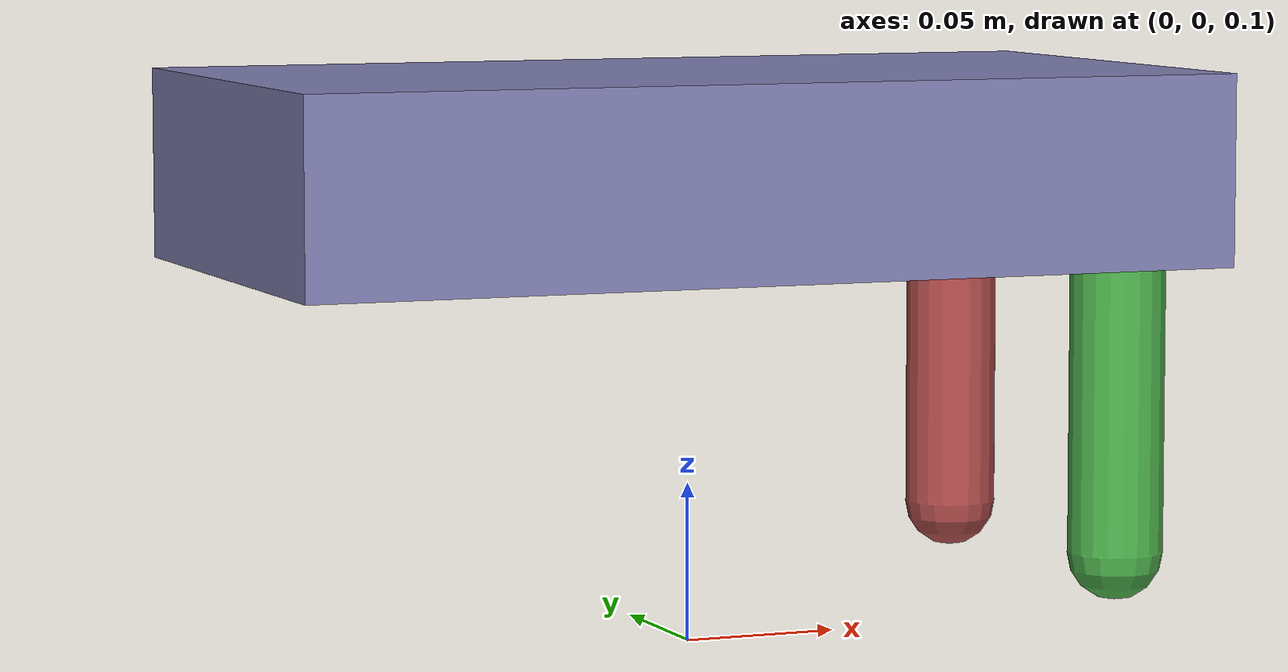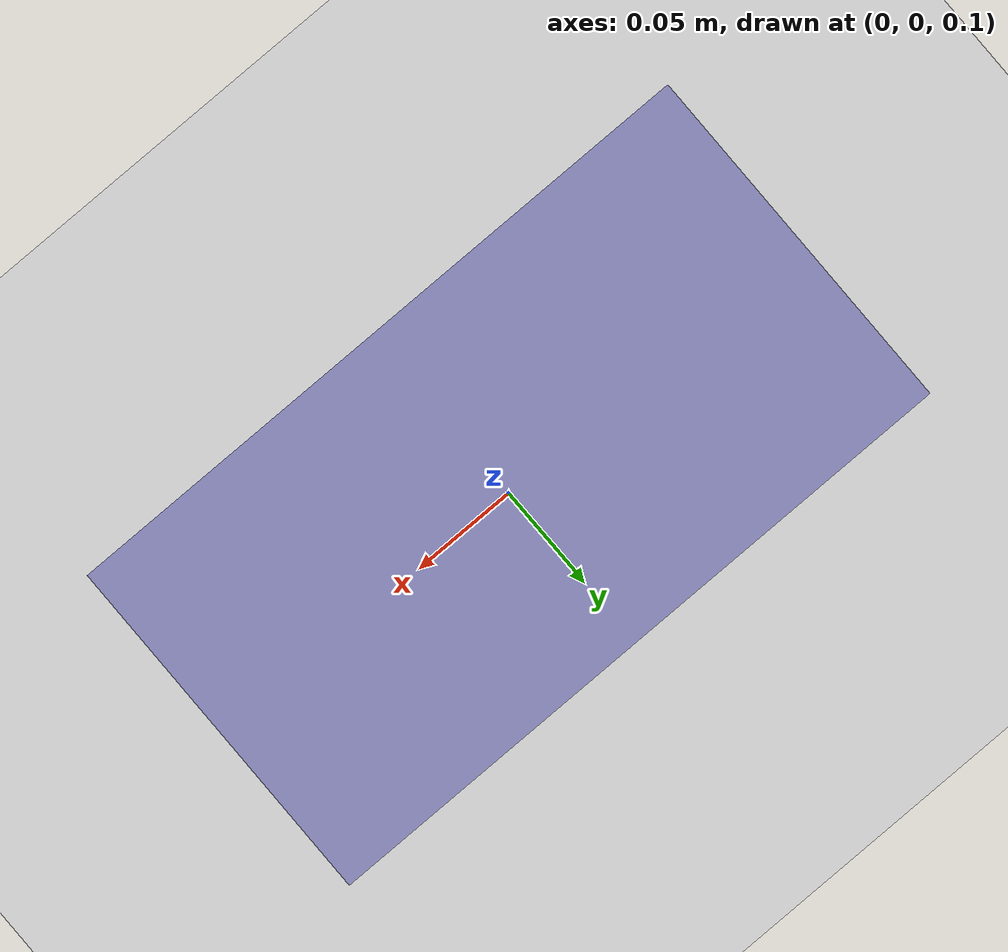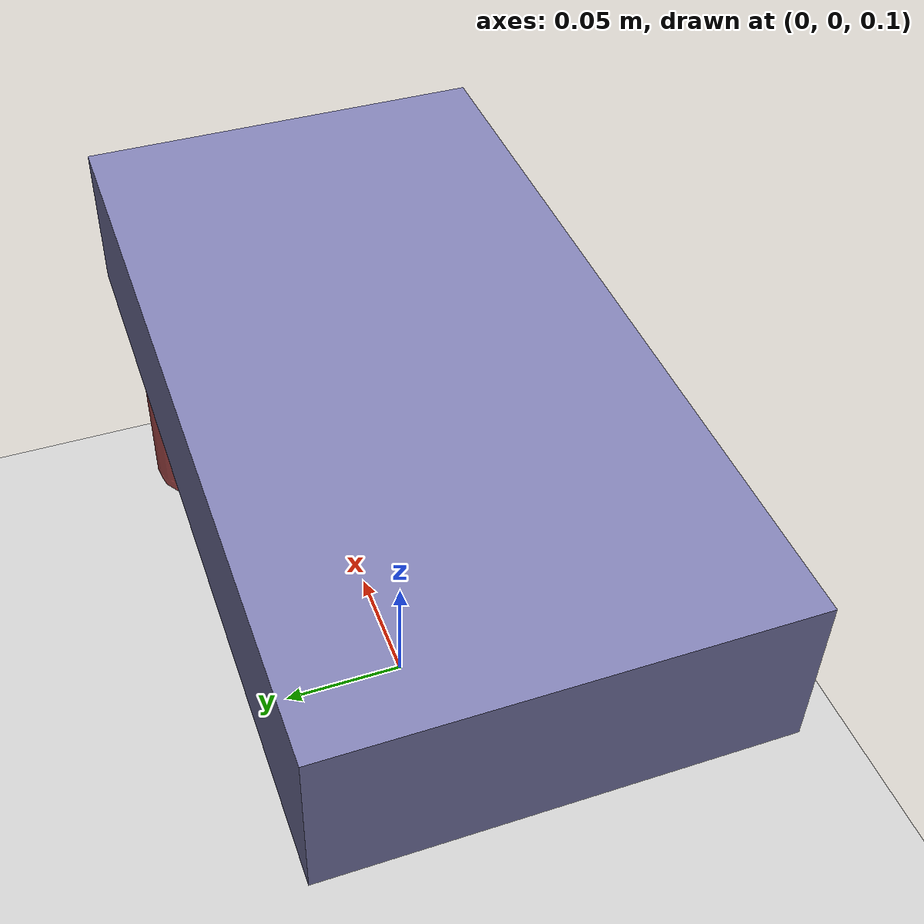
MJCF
<mujoco>
  <worldbody>
    <geom name="floor" type="plane" pos="0 0 0" size="5 5 0.1" rgba="0.8 0.8 0.8 1"/>
    <body name="base" pos="0 0 0.25">
      <freejoint/>
      <geom type="box" size="0.15 0.08 0.03" mass="2.0" rgba="0.5 0.5 0.7 1"/>
      <body name="fl" pos="0.12 0.06 0">
        <joint name="fl_hip" type="hinge" axis="0 1 0" range="-1.0 1.0"/>
        <geom type="capsule" size="0.015" fromto="0 0 0 0 0 -0.12" mass="0.1" rgba="0.7 0.3 0.3 1"/>
      </body>
      <body name="fr" pos="0.12 -0.06 0">
        <joint name="fr_hip" type="hinge" axis="0 1 0" range="-1.0 1.0"/>
        <geom type="capsule" size="0.015" fromto="0 0 0 0 0 -0.12" mass="0.1" rgba="0.3 0.7 0.3 1"/>
      </body>
    </body>
  </worldbody>
  <actuator>
    <motor name="fl_motor" joint="fl_hip" ctrlrange="-2.0 2.0" gear="2.5"/>
    <motor name="fr_motor" joint="fr_hip" ctrlrange="-2.0 2.0" gear="2.5"/>
  </actuator>
</mujoco>
